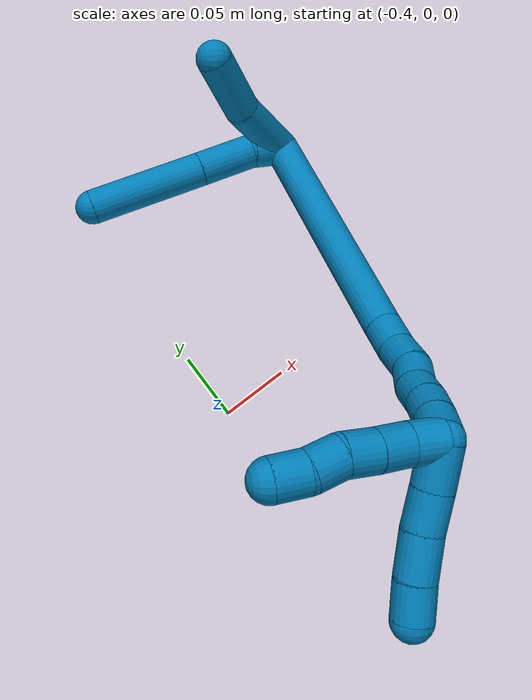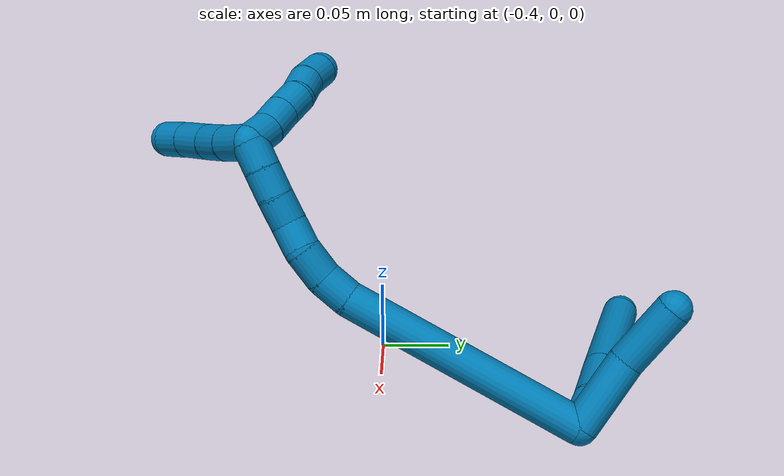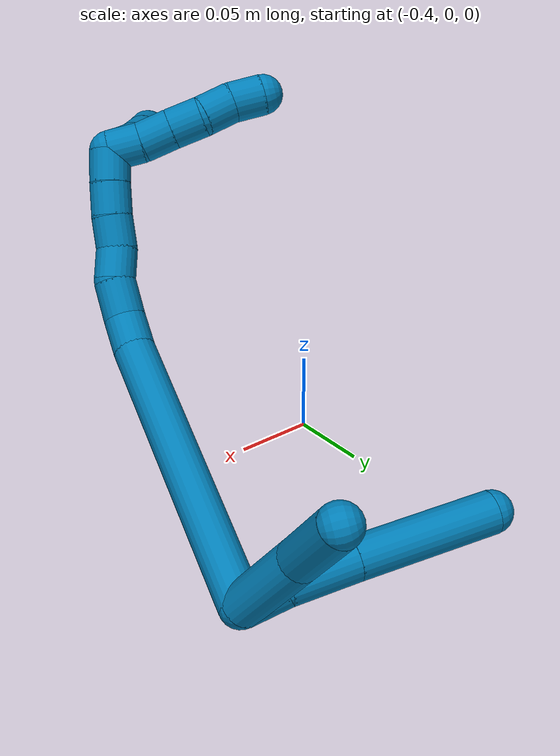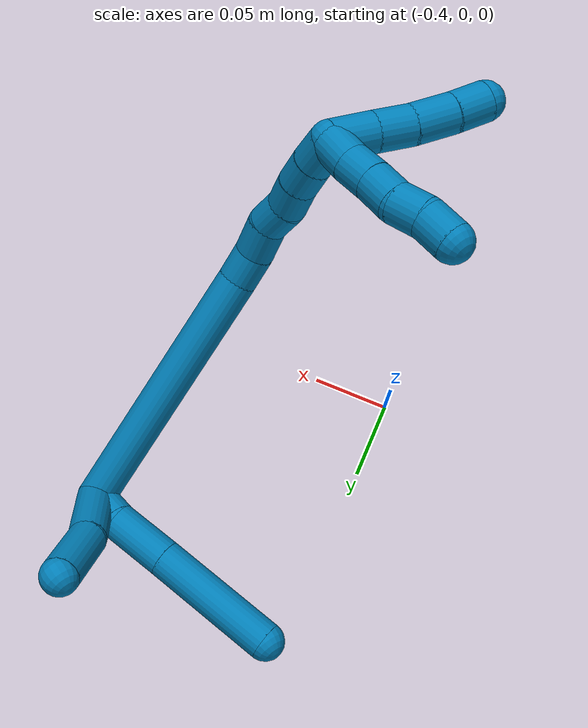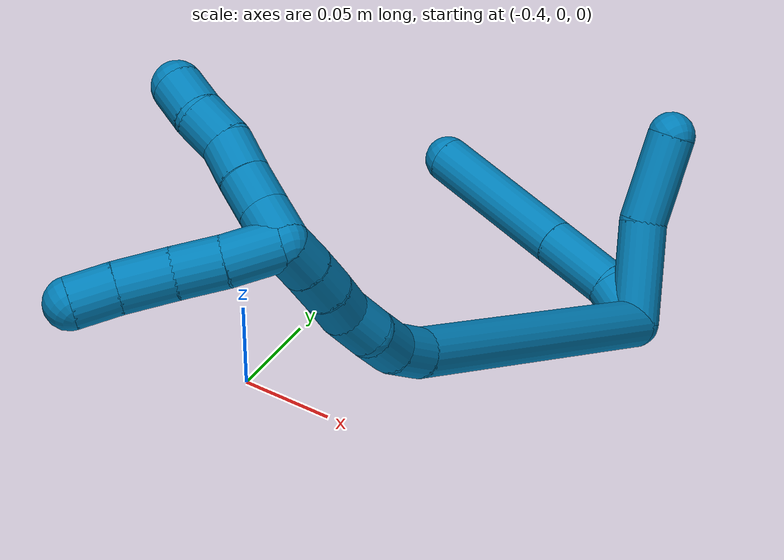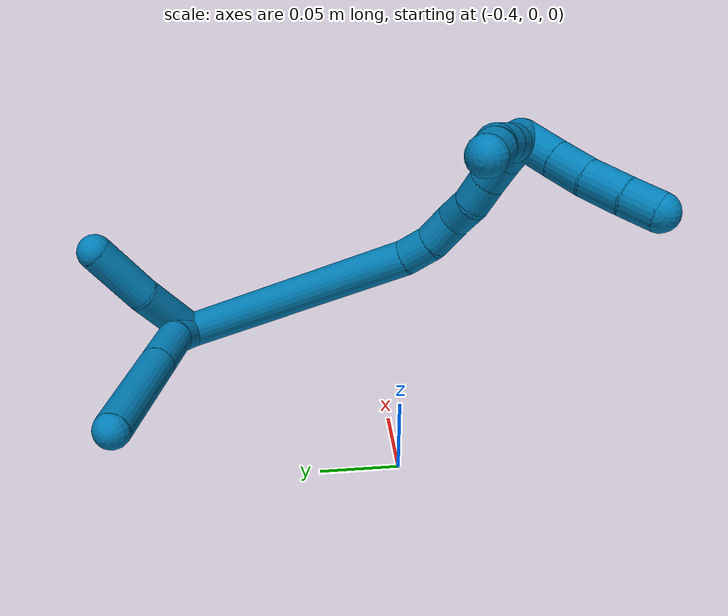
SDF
<sdf version="1.7">
 <world name="default">
  <model name="9">
   <static>0</static>
   <link name="9">
    <collision name="collision-cylinder-e_1_2_8">
     <pose>4.3e-05 -0.002421 0.012583 0.190098 0.003324 0.000317</pose>
     <geometry><cylinder><radius>0.0125</radius><length>0.025628</length></cylinder></geometry>
     <surface>
      <friction><ode><mu>1.16</mu><mu2>1.16</mu2><slip1>0</slip1><slip2>0</slip2></ode></friction>
      <contact><ode><kp>1e+06</kp><kd>1</kd><max_vel>0</max_vel><min_depth>0.001</min_depth></ode></contact>
     </surface>
    </collision>
    <visual name="visual-cylinder-e_1_2_8">
     <pose>4.3e-05 -0.002421 0.012583 0.190098 0.003324 0.000317</pose>
     <geometry><cylinder><radius>0.0125</radius><length>0.025628</length></cylinder></geometry>
     <material><ambient>0 0.490196 0.709804 1</ambient></material>
    </visual>
    <collision name="collision-cylinder-e_2_8_9">
     <pose>-0.005436 -0.005796 0.044583 0.049077 -0.27673 -0.006836</pose>
     <geometry><cylinder><radius>0.0125</radius><length>0.040417</length></cylinder></geometry>
     <surface>
      <friction><ode><mu>1.16</mu><mu2>1.16</mu2><slip1>0</slip1><slip2>0</slip2></ode></friction>
      <contact><ode><kp>1e+06</kp><kd>1</kd><max_vel>0</max_vel><min_depth>0.001</min_depth></ode></contact>
     </surface>
    </collision>
    <visual name="visual-cylinder-e_2_8_9">
     <pose>-0.005436 -0.005796 0.044583 0.049077 -0.27673 -0.006836</pose>
     <geometry><cylinder><radius>0.0125</radius><length>0.040417</length></cylinder></geometry>
     <material><ambient>0 0.490196 0.709804 1</ambient></material>
    </visual>
    <collision name="collision-cylinder-e_3_9_6">
     <pose>-0.022375 -0.007985 0.104374 0.030577 -0.275483 -0.004239</pose>
     <geometry><cylinder><radius>0.0125</radius><length>0.083955</length></cylinder></geometry>
     <surface>
      <friction><ode><mu>1.16</mu><mu2>1.16</mu2><slip1>0</slip1><slip2>0</slip2></ode></friction>
      <contact><ode><kp>1e+06</kp><kd>1</kd><max_vel>0</max_vel><min_depth>0.001</min_depth></ode></contact>
     </surface>
    </collision>
    <visual name="visual-cylinder-e_3_9_6">
     <pose>-0.022375 -0.007985 0.104374 0.030577 -0.275483 -0.004239</pose>
     <geometry><cylinder><radius>0.0125</radius><length>0.083955</length></cylinder></geometry>
     <material><ambient>0 0.490196 0.709804 1</ambient></material>
    </visual>
    <collision name="collision-cylinder-e_1_2_10">
     <pose>0.017009 -0.010013 0.017698 0.51488 0.696561 0.190607</pose>
     <geometry><cylinder><radius>0.0125</radius><length>0.05302</length></cylinder></geometry>
     <surface>
      <friction><ode><mu>1.16</mu><mu2>1.16</mu2><slip1>0</slip1><slip2>0</slip2></ode></friction>
      <contact><ode><kp>1e+06</kp><kd>1</kd><max_vel>0</max_vel><min_depth>0.001</min_depth></ode></contact>
     </surface>
    </collision>
    <visual name="visual-cylinder-e_1_2_10">
     <pose>0.017009 -0.010013 0.017698 0.51488 0.696561 0.190607</pose>
     <geometry><cylinder><radius>0.0125</radius><length>0.05302</length></cylinder></geometry>
     <material><ambient>0 0.490196 0.709804 1</ambient></material>
    </visual>
    <collision name="collision-cylinder-e_2_10_5">
     <pose>0.052883 -0.027801 0.047033 0.588975 0.932594 0.302979</pose>
     <geometry><cylinder><radius>0.0125</radius><length>0.04698</length></cylinder></geometry>
     <surface>
      <friction><ode><mu>1.16</mu><mu2>1.16</mu2><slip1>0</slip1><slip2>0</slip2></ode></friction>
      <contact><ode><kp>1e+06</kp><kd>1</kd><max_vel>0</max_vel><min_depth>0.001</min_depth></ode></contact>
     </surface>
    </collision>
    <visual name="visual-cylinder-e_2_10_5">
     <pose>0.052883 -0.027801 0.047033 0.588975 0.932594 0.302979</pose>
     <geometry><cylinder><radius>0.0125</radius><length>0.04698</length></cylinder></geometry>
     <material><ambient>0 0.490196 0.709804 1</ambient></material>
    </visual>
    <collision name="collision-cylinder-e_1_2_11">
     <pose>-0.043645 -0.074267 -0.014127 1.75876 -0.523578 -0.626124</pose>
     <geometry><cylinder><radius>0.0125</radius><length>0.174586</length></cylinder></geometry>
     <surface>
      <friction><ode><mu>1.16</mu><mu2>1.16</mu2><slip1>0</slip1><slip2>0</slip2></ode></friction>
      <contact><ode><kp>1e+06</kp><kd>1</kd><max_vel>0</max_vel><min_depth>0.001</min_depth></ode></contact>
     </surface>
    </collision>
    <visual name="visual-cylinder-e_1_2_11">
     <pose>-0.043645 -0.074267 -0.014127 1.75876 -0.523578 -0.626124</pose>
     <geometry><cylinder><radius>0.0125</radius><length>0.174586</length></cylinder></geometry>
     <material><ambient>0 0.490196 0.709804 1</ambient></material>
    </visual>
    <collision name="collision-cylinder-e_2_11_12">
     <pose>-0.09094 -0.158771 -0.029052 1.64868 -0.341533 -0.368626</pose>
     <geometry><cylinder><radius>0.0125</radius><length>0.021794</length></cylinder></geometry>
     <surface>
      <friction><ode><mu>1.16</mu><mu2>1.16</mu2><slip1>0</slip1><slip2>0</slip2></ode></friction>
      <contact><ode><kp>1e+06</kp><kd>1</kd><max_vel>0</max_vel><min_depth>0.001</min_depth></ode></contact>
     </surface>
    </collision>
    <visual name="visual-cylinder-e_2_11_12">
     <pose>-0.09094 -0.158771 -0.029052 1.64868 -0.341533 -0.368626</pose>
     <geometry><cylinder><radius>0.0125</radius><length>0.021794</length></cylinder></geometry>
     <material><ambient>0 0.490196 0.709804 1</ambient></material>
    </visual>
    <collision name="collision-cylinder-e_3_12_13">
     <pose>-0.09557 -0.180746 -0.030039 1.58683 -0.083298 -0.084643</pose>
     <geometry><cylinder><radius>0.0125</radius><length>0.02356</length></cylinder></geometry>
     <surface>
      <friction><ode><mu>1.16</mu><mu2>1.16</mu2><slip1>0</slip1><slip2>0</slip2></ode></friction>
      <contact><ode><kp>1e+06</kp><kd>1</kd><max_vel>0</max_vel><min_depth>0.001</min_depth></ode></contact>
     </surface>
    </collision>
    <visual name="visual-cylinder-e_3_12_13">
     <pose>-0.09557 -0.180746 -0.030039 1.58683 -0.083298 -0.084643</pose>
     <geometry><cylinder><radius>0.0125</radius><length>0.02356</length></cylinder></geometry>
     <material><ambient>0 0.490196 0.709804 1</ambient></material>
    </visual>
    <collision name="collision-cylinder-e_4_13_14">
     <pose>-0.098061 -0.201934 -0.027306 1.27098 -0.151642 -0.111942</pose>
     <geometry><cylinder><radius>0.0125</radius><length>0.020013</length></cylinder></geometry>
     <surface>
      <friction><ode><mu>1.16</mu><mu2>1.16</mu2><slip1>0</slip1><slip2>0</slip2></ode></friction>
      <contact><ode><kp>1e+06</kp><kd>1</kd><max_vel>0</max_vel><min_depth>0.001</min_depth></ode></contact>
     </surface>
    </collision>
    <visual name="visual-cylinder-e_4_13_14">
     <pose>-0.098061 -0.201934 -0.027306 1.27098 -0.151642 -0.111942</pose>
     <geometry><cylinder><radius>0.0125</radius><length>0.020013</length></cylinder></geometry>
     <material><ambient>0 0.490196 0.709804 1</ambient></material>
    </visual>
    <collision name="collision-cylinder-e_5_14_15">
     <pose>-0.099048 -0.221331 -0.023316 1.46383 0.052477 0.047146</pose>
     <geometry><cylinder><radius>0.0125</radius><length>0.020036</length></cylinder></geometry>
     <surface>
      <friction><ode><mu>1.16</mu><mu2>1.16</mu2><slip1>0</slip1><slip2>0</slip2></ode></friction>
      <contact><ode><kp>1e+06</kp><kd>1</kd><max_vel>0</max_vel><min_depth>0.001</min_depth></ode></contact>
     </surface>
    </collision>
    <visual name="visual-cylinder-e_5_14_15">
     <pose>-0.099048 -0.221331 -0.023316 1.46383 0.052477 0.047146</pose>
     <geometry><cylinder><radius>0.0125</radius><length>0.020036</length></cylinder></geometry>
     <material><ambient>0 0.490196 0.709804 1</ambient></material>
    </visual>
    <collision name="collision-cylinder-e_6_15_16">
     <pose>-0.098463 -0.241096 -0.020323 1.37713 0.005875 0.004835</pose>
     <geometry><cylinder><radius>0.0125</radius><length>0.02001</length></cylinder></geometry>
     <surface>
      <friction><ode><mu>1.16</mu><mu2>1.16</mu2><slip1>0</slip1><slip2>0</slip2></ode></friction>
      <contact><ode><kp>1e+06</kp><kd>1</kd><max_vel>0</max_vel><min_depth>0.001</min_depth></ode></contact>
     </surface>
    </collision>
    <visual name="visual-cylinder-e_6_15_16">
     <pose>-0.098463 -0.241096 -0.020323 1.37713 0.005875 0.004835</pose>
     <geometry><cylinder><radius>0.0125</radius><length>0.02001</length></cylinder></geometry>
     <material><ambient>0 0.490196 0.709804 1</ambient></material>
    </visual>
    <collision name="collision-cylinder-e_7_16_1">
     <pose>-0.098721 -0.260622 -0.01602 1.33065 -0.031638 -0.024826</pose>
     <geometry><cylinder><radius>0.0125</radius><length>0.020001</length></cylinder></geometry>
     <surface>
      <friction><ode><mu>1.16</mu><mu2>1.16</mu2><slip1>0</slip1><slip2>0</slip2></ode></friction>
      <contact><ode><kp>1e+06</kp><kd>1</kd><max_vel>0</max_vel><min_depth>0.001</min_depth></ode></contact>
     </surface>
    </collision>
    <visual name="visual-cylinder-e_7_16_1">
     <pose>-0.098721 -0.260622 -0.01602 1.33065 -0.031638 -0.024826</pose>
     <geometry><cylinder><radius>0.0125</radius><length>0.020001</length></cylinder></geometry>
     <material><ambient>0 0.490196 0.709804 1</ambient></material>
    </visual>
    <collision name="collision-cylinder-e_1_1_17">
     <pose>-0.111957 -0.273327 -0.010443 0.752648 -1.24373 -0.551983</pose>
     <geometry><cylinder><radius>0.0125</radius><length>0.027286</length></cylinder></geometry>
     <surface>
      <friction><ode><mu>1.16</mu><mu2>1.16</mu2><slip1>0</slip1><slip2>0</slip2></ode></friction>
      <contact><ode><kp>1e+06</kp><kd>1</kd><max_vel>0</max_vel><min_depth>0.001</min_depth></ode></contact>
     </surface>
    </collision>
    <visual name="visual-cylinder-e_1_1_17">
     <pose>-0.111957 -0.273327 -0.010443 0.752648 -1.24373 -0.551983</pose>
     <geometry><cylinder><radius>0.0125</radius><length>0.027286</length></cylinder></geometry>
     <material><ambient>0 0.490196 0.709804 1</ambient></material>
    </visual>
    <collision name="collision-cylinder-e_2_17_18">
     <pose>-0.135855 -0.279318 -0.003862 0.724742 -1.18037 -0.497362</pose>
     <geometry><cylinder><radius>0.0125</radius><length>0.023743</length></cylinder></geometry>
     <surface>
      <friction><ode><mu>1.16</mu><mu2>1.16</mu2><slip1>0</slip1><slip2>0</slip2></ode></friction>
      <contact><ode><kp>1e+06</kp><kd>1</kd><max_vel>0</max_vel><min_depth>0.001</min_depth></ode></contact>
     </surface>
    </collision>
    <visual name="visual-cylinder-e_2_17_18">
     <pose>-0.135855 -0.279318 -0.003862 0.724742 -1.18037 -0.497362</pose>
     <geometry><cylinder><radius>0.0125</radius><length>0.023743</length></cylinder></geometry>
     <material><ambient>0 0.490196 0.709804 1</ambient></material>
    </visual>
    <collision name="collision-cylinder-e_3_18_19">
     <pose>-0.159167 -0.286522 0.002495 0.955572 -1.175 -0.664114</pose>
     <geometry><cylinder><radius>0.0125</radius><length>0.026734</length></cylinder></geometry>
     <surface>
      <friction><ode><mu>1.16</mu><mu2>1.16</mu2><slip1>0</slip1><slip2>0</slip2></ode></friction>
      <contact><ode><kp>1e+06</kp><kd>1</kd><max_vel>0</max_vel><min_depth>0.001</min_depth></ode></contact>
     </surface>
    </collision>
    <visual name="visual-cylinder-e_3_18_19">
     <pose>-0.159167 -0.286522 0.002495 0.955572 -1.175 -0.664114</pose>
     <geometry><cylinder><radius>0.0125</radius><length>0.026734</length></cylinder></geometry>
     <material><ambient>0 0.490196 0.709804 1</ambient></material>
    </visual>
    <collision name="collision-cylinder-e_4_19_4">
     <pose>-0.181893 -0.294316 0.00713 1.13709 -1.20745 -0.830038</pose>
     <geometry><cylinder><radius>0.0125</radius><length>0.022237</length></cylinder></geometry>
     <surface>
      <friction><ode><mu>1.16</mu><mu2>1.16</mu2><slip1>0</slip1><slip2>0</slip2></ode></friction>
      <contact><ode><kp>1e+06</kp><kd>1</kd><max_vel>0</max_vel><min_depth>0.001</min_depth></ode></contact>
     </surface>
    </collision>
    <visual name="visual-cylinder-e_4_19_4">
     <pose>-0.181893 -0.294316 0.00713 1.13709 -1.20745 -0.830038</pose>
     <geometry><cylinder><radius>0.0125</radius><length>0.022237</length></cylinder></geometry>
     <material><ambient>0 0.490196 0.709804 1</ambient></material>
    </visual>
    <collision name="collision-cylinder-e_1_1_20">
     <pose>-0.098967 -0.270376 -0.003643 0.004554 0.006992 1.6e-05</pose>
     <geometry><cylinder><radius>0.0125</radius><length>0.02</length></cylinder></geometry>
     <surface>
      <friction><ode><mu>1.16</mu><mu2>1.16</mu2><slip1>0</slip1><slip2>0</slip2></ode></friction>
      <contact><ode><kp>1e+06</kp><kd>1</kd><max_vel>0</max_vel><min_depth>0.001</min_depth></ode></contact>
     </surface>
    </collision>
    <visual name="visual-cylinder-e_1_1_20">
     <pose>-0.098967 -0.270376 -0.003643 0.004554 0.006992 1.6e-05</pose>
     <geometry><cylinder><radius>0.0125</radius><length>0.02</length></cylinder></geometry>
     <material><ambient>0 0.490196 0.709804 1</ambient></material>
    </visual>
    <collision name="collision-cylinder-e_2_20_21">
     <pose>-0.098515 -0.272054 0.016215 0.164103 0.038204 0.003142</pose>
     <geometry><cylinder><radius>0.0125</radius><length>0.02</length></cylinder></geometry>
     <surface>
      <friction><ode><mu>1.16</mu><mu2>1.16</mu2><slip1>0</slip1><slip2>0</slip2></ode></friction>
      <contact><ode><kp>1e+06</kp><kd>1</kd><max_vel>0</max_vel><min_depth>0.001</min_depth></ode></contact>
     </surface>
    </collision>
    <visual name="visual-cylinder-e_2_20_21">
     <pose>-0.098515 -0.272054 0.016215 0.164103 0.038204 0.003142</pose>
     <geometry><cylinder><radius>0.0125</radius><length>0.02</length></cylinder></geometry>
     <material><ambient>0 0.490196 0.709804 1</ambient></material>
    </visual>
    <collision name="collision-cylinder-e_3_21_22">
     <pose>-0.097398 -0.274897 0.035973 0.121625 0.073627 0.004485</pose>
     <geometry><cylinder><radius>0.0125</radius><length>0.02</length></cylinder></geometry>
     <surface>
      <friction><ode><mu>1.16</mu><mu2>1.16</mu2><slip1>0</slip1><slip2>0</slip2></ode></friction>
      <contact><ode><kp>1e+06</kp><kd>1</kd><max_vel>0</max_vel><min_depth>0.001</min_depth></ode></contact>
     </surface>
    </collision>
    <visual name="visual-cylinder-e_3_21_22">
     <pose>-0.097398 -0.274897 0.035973 0.121625 0.073627 0.004485</pose>
     <geometry><cylinder><radius>0.0125</radius><length>0.02</length></cylinder></geometry>
     <material><ambient>0 0.490196 0.709804 1</ambient></material>
    </visual>
    <collision name="collision-cylinder-e_4_22_23">
     <pose>-0.098496 -0.278433 0.055423 0.238903 -0.18442 -0.022197</pose>
     <geometry><cylinder><radius>0.0125</radius><length>0.02</length></cylinder></geometry>
     <surface>
      <friction><ode><mu>1.16</mu><mu2>1.16</mu2><slip1>0</slip1><slip2>0</slip2></ode></friction>
      <contact><ode><kp>1e+06</kp><kd>1</kd><max_vel>0</max_vel><min_depth>0.001</min_depth></ode></contact>
     </surface>
    </collision>
    <visual name="visual-cylinder-e_4_22_23">
     <pose>-0.098496 -0.278433 0.055423 0.238903 -0.18442 -0.022197</pose>
     <geometry><cylinder><radius>0.0125</radius><length>0.02</length></cylinder></geometry>
     <material><ambient>0 0.490196 0.709804 1</ambient></material>
    </visual>
    <collision name="collision-cylinder-e_5_23_3">
     <pose>-0.101123 -0.280942 0.074942 0.018353 -0.079365 -0.000729</pose>
     <geometry><cylinder><radius>0.0125</radius><length>0.02</length></cylinder></geometry>
     <surface>
      <friction><ode><mu>1.16</mu><mu2>1.16</mu2><slip1>0</slip1><slip2>0</slip2></ode></friction>
      <contact><ode><kp>1e+06</kp><kd>1</kd><max_vel>0</max_vel><min_depth>0.001</min_depth></ode></contact>
     </surface>
    </collision>
    <visual name="visual-cylinder-e_5_23_3">
     <pose>-0.101123 -0.280942 0.074942 0.018353 -0.079365 -0.000729</pose>
     <geometry><cylinder><radius>0.0125</radius><length>0.02</length></cylinder></geometry>
     <material><ambient>0 0.490196 0.709804 1</ambient></material>
    </visual>
    <collision name="collision-sphere-3">
     <pose>-0.101915 -0.281125 0.084908 0 -0 0</pose>
     <geometry><sphere><radius>0.0125</radius></sphere></geometry>
     <surface>
      <friction><ode><mu>1.16</mu><mu2>1.16</mu2><slip1>0</slip1><slip2>0</slip2></ode></friction>
      <contact><ode><kp>1e+06</kp><kd>1</kd><max_vel>0</max_vel><min_depth>0.001</min_depth></ode></contact>
     </surface>
    </collision>
    <visual name="visual-sphere-3">
     <pose>-0.101915 -0.281125 0.084908 0 -0 0</pose>
     <geometry><sphere><radius>0.0125</radius></sphere></geometry>
     <material><ambient>0 0.490196 0.709804 1</ambient></material>
    </visual>
    <collision name="collision-sphere-23">
     <pose>-0.10033 -0.280759 0.064975 0 -0 0</pose>
     <geometry><sphere><radius>0.0125</radius></sphere></geometry>
     <surface>
      <friction><ode><mu>1.16</mu><mu2>1.16</mu2><slip1>0</slip1><slip2>0</slip2></ode></friction>
      <contact><ode><kp>1e+06</kp><kd>1</kd><max_vel>0</max_vel><min_depth>0.001</min_depth></ode></contact>
     </surface>
    </collision>
    <visual name="visual-sphere-23">
     <pose>-0.10033 -0.280759 0.064975 0 -0 0</pose>
     <geometry><sphere><radius>0.0125</radius></sphere></geometry>
     <material><ambient>0 0.490196 0.709804 1</ambient></material>
    </visual>
    <collision name="collision-sphere-22">
     <pose>-0.096662 -0.276107 0.045872 0 -0 0</pose>
     <geometry><sphere><radius>0.0125</radius></sphere></geometry>
     <surface>
      <friction><ode><mu>1.16</mu><mu2>1.16</mu2><slip1>0</slip1><slip2>0</slip2></ode></friction>
      <contact><ode><kp>1e+06</kp><kd>1</kd><max_vel>0</max_vel><min_depth>0.001</min_depth></ode></contact>
     </surface>
    </collision>
    <visual name="visual-sphere-22">
     <pose>-0.096662 -0.276107 0.045872 0 -0 0</pose>
     <geometry><sphere><radius>0.0125</radius></sphere></geometry>
     <material><ambient>0 0.490196 0.709804 1</ambient></material>
    </visual>
    <collision name="collision-sphere-21">
     <pose>-0.098133 -0.273687 0.026074 0 -0 0</pose>
     <geometry><sphere><radius>0.0125</radius></sphere></geometry>
     <surface>
      <friction><ode><mu>1.16</mu><mu2>1.16</mu2><slip1>0</slip1><slip2>0</slip2></ode></friction>
      <contact><ode><kp>1e+06</kp><kd>1</kd><max_vel>0</max_vel><min_depth>0.001</min_depth></ode></contact>
     </surface>
    </collision>
    <visual name="visual-sphere-21">
     <pose>-0.098133 -0.273687 0.026074 0 -0 0</pose>
     <geometry><sphere><radius>0.0125</radius></sphere></geometry>
     <material><ambient>0 0.490196 0.709804 1</ambient></material>
    </visual>
    <collision name="collision-sphere-20">
     <pose>-0.098897 -0.270422 0.006357 0 -0 0</pose>
     <geometry><sphere><radius>0.0125</radius></sphere></geometry>
     <surface>
      <friction><ode><mu>1.16</mu><mu2>1.16</mu2><slip1>0</slip1><slip2>0</slip2></ode></friction>
      <contact><ode><kp>1e+06</kp><kd>1</kd><max_vel>0</max_vel><min_depth>0.001</min_depth></ode></contact>
     </surface>
    </collision>
    <visual name="visual-sphere-20">
     <pose>-0.098897 -0.270422 0.006357 0 -0 0</pose>
     <geometry><sphere><radius>0.0125</radius></sphere></geometry>
     <material><ambient>0 0.490196 0.709804 1</ambient></material>
    </visual>
    <collision name="collision-sphere-4">
     <pose>-0.192285 -0.297902 0.008791 0 -0 0</pose>
     <geometry><sphere><radius>0.0125</radius></sphere></geometry>
     <surface>
      <friction><ode><mu>1.16</mu><mu2>1.16</mu2><slip1>0</slip1><slip2>0</slip2></ode></friction>
      <contact><ode><kp>1e+06</kp><kd>1</kd><max_vel>0</max_vel><min_depth>0.001</min_depth></ode></contact>
     </surface>
    </collision>
    <visual name="visual-sphere-4">
     <pose>-0.192285 -0.297902 0.008791 0 -0 0</pose>
     <geometry><sphere><radius>0.0125</radius></sphere></geometry>
     <material><ambient>0 0.490196 0.709804 1</ambient></material>
    </visual>
    <collision name="collision-sphere-5">
     <pose>0.07175 -0.035575 0.058669 0 -0 0</pose>
     <geometry><sphere><radius>0.0125</radius></sphere></geometry>
     <surface>
      <friction><ode><mu>1.16</mu><mu2>1.16</mu2><slip1>0</slip1><slip2>0</slip2></ode></friction>
      <contact><ode><kp>1e+06</kp><kd>1</kd><max_vel>0</max_vel><min_depth>0.001</min_depth></ode></contact>
     </surface>
    </collision>
    <visual name="visual-sphere-5">
     <pose>0.07175 -0.035575 0.058669 0 -0 0</pose>
     <geometry><sphere><radius>0.0125</radius></sphere></geometry>
     <material><ambient>0 0.490196 0.709804 1</ambient></material>
    </visual>
    <collision name="collision-sphere-10">
     <pose>0.034017 -0.020027 0.035397 0 -0 0</pose>
     <geometry><sphere><radius>0.0125</radius></sphere></geometry>
     <surface>
      <friction><ode><mu>1.16</mu><mu2>1.16</mu2><slip1>0</slip1><slip2>0</slip2></ode></friction>
      <contact><ode><kp>1e+06</kp><kd>1</kd><max_vel>0</max_vel><min_depth>0.001</min_depth></ode></contact>
     </surface>
    </collision>
    <visual name="visual-sphere-10">
     <pose>0.034017 -0.020027 0.035397 0 -0 0</pose>
     <geometry><sphere><radius>0.0125</radius></sphere></geometry>
     <material><ambient>0 0.490196 0.709804 1</ambient></material>
    </visual>
    <collision name="collision-sphere-6">
     <pose>-0.033794 -0.00922 0.14475 0 -0 0</pose>
     <geometry><sphere><radius>0.0125</radius></sphere></geometry>
     <surface>
      <friction><ode><mu>1.16</mu><mu2>1.16</mu2><slip1>0</slip1><slip2>0</slip2></ode></friction>
      <contact><ode><kp>1e+06</kp><kd>1</kd><max_vel>0</max_vel><min_depth>0.001</min_depth></ode></contact>
     </surface>
    </collision>
    <visual name="visual-sphere-6">
     <pose>-0.033794 -0.00922 0.14475 0 -0 0</pose>
     <geometry><sphere><radius>0.0125</radius></sphere></geometry>
     <material><ambient>0 0.490196 0.709804 1</ambient></material>
    </visual>
    <collision name="collision-sphere-9">
     <pose>-0.010957 -0.00675 0.063999 0 -0 0</pose>
     <geometry><sphere><radius>0.0125</radius></sphere></geometry>
     <surface>
      <friction><ode><mu>1.16</mu><mu2>1.16</mu2><slip1>0</slip1><slip2>0</slip2></ode></friction>
      <contact><ode><kp>1e+06</kp><kd>1</kd><max_vel>0</max_vel><min_depth>0.001</min_depth></ode></contact>
     </surface>
    </collision>
    <visual name="visual-sphere-9">
     <pose>-0.010957 -0.00675 0.063999 0 -0 0</pose>
     <geometry><sphere><radius>0.0125</radius></sphere></geometry>
     <material><ambient>0 0.490196 0.709804 1</ambient></material>
    </visual>
    <collision name="collision-sphere-2">
     <geometry><sphere><radius>0.0125</radius></sphere></geometry>
     <surface>
      <friction><ode><mu>1.16</mu><mu2>1.16</mu2><slip1>0</slip1><slip2>0</slip2></ode></friction>
      <contact><ode><kp>1e+06</kp><kd>1</kd><max_vel>0</max_vel><min_depth>0.001</min_depth></ode></contact>
     </surface>
    </collision>
    <visual name="visual-sphere-2">
     <geometry><sphere><radius>0.0125</radius></sphere></geometry>
     <material><ambient>0 0.490196 0.709804 1</ambient></material>
    </visual>
    <collision name="collision-sphere-19">
     <pose>-0.171501 -0.290731 0.00547 0 -0 0</pose>
     <geometry><sphere><radius>0.0125</radius></sphere></geometry>
     <surface>
      <friction><ode><mu>1.16</mu><mu2>1.16</mu2><slip1>0</slip1><slip2>0</slip2></ode></friction>
      <contact><ode><kp>1e+06</kp><kd>1</kd><max_vel>0</max_vel><min_depth>0.001</min_depth></ode></contact>
     </surface>
    </collision>
    <visual name="visual-sphere-19">
     <pose>-0.171501 -0.290731 0.00547 0 -0 0</pose>
     <geometry><sphere><radius>0.0125</radius></sphere></geometry>
     <material><ambient>0 0.490196 0.709804 1</ambient></material>
    </visual>
    <collision name="collision-sphere-8">
     <pose>8.5e-05 -0.004843 0.025167 0 -0 0</pose>
     <geometry><sphere><radius>0.0125</radius></sphere></geometry>
     <surface>
      <friction><ode><mu>1.16</mu><mu2>1.16</mu2><slip1>0</slip1><slip2>0</slip2></ode></friction>
      <contact><ode><kp>1e+06</kp><kd>1</kd><max_vel>0</max_vel><min_depth>0.001</min_depth></ode></contact>
     </surface>
    </collision>
    <visual name="visual-sphere-8">
     <pose>8.5e-05 -0.004843 0.025167 0 -0 0</pose>
     <geometry><sphere><radius>0.0125</radius></sphere></geometry>
     <material><ambient>0 0.490196 0.709804 1</ambient></material>
    </visual>
    <collision name="collision-sphere-11">
     <pose>-0.08729 -0.148535 -0.028253 0 -0 0</pose>
     <geometry><sphere><radius>0.0125</radius></sphere></geometry>
     <surface>
      <friction><ode><mu>1.16</mu><mu2>1.16</mu2><slip1>0</slip1><slip2>0</slip2></ode></friction>
      <contact><ode><kp>1e+06</kp><kd>1</kd><max_vel>0</max_vel><min_depth>0.001</min_depth></ode></contact>
     </surface>
    </collision>
    <visual name="visual-sphere-11">
     <pose>-0.08729 -0.148535 -0.028253 0 -0 0</pose>
     <geometry><sphere><radius>0.0125</radius></sphere></geometry>
     <material><ambient>0 0.490196 0.709804 1</ambient></material>
    </visual>
    <collision name="collision-sphere-12">
     <pose>-0.09459 -0.169008 -0.029851 0 -0 0</pose>
     <geometry><sphere><radius>0.0125</radius></sphere></geometry>
     <surface>
      <friction><ode><mu>1.16</mu><mu2>1.16</mu2><slip1>0</slip1><slip2>0</slip2></ode></friction>
      <contact><ode><kp>1e+06</kp><kd>1</kd><max_vel>0</max_vel><min_depth>0.001</min_depth></ode></contact>
     </surface>
    </collision>
    <visual name="visual-sphere-12">
     <pose>-0.09459 -0.169008 -0.029851 0 -0 0</pose>
     <geometry><sphere><radius>0.0125</radius></sphere></geometry>
     <material><ambient>0 0.490196 0.709804 1</ambient></material>
    </visual>
    <collision name="collision-sphere-13">
     <pose>-0.09655 -0.192484 -0.030227 0 -0 0</pose>
     <geometry><sphere><radius>0.0125</radius></sphere></geometry>
     <surface>
      <friction><ode><mu>1.16</mu><mu2>1.16</mu2><slip1>0</slip1><slip2>0</slip2></ode></friction>
      <contact><ode><kp>1e+06</kp><kd>1</kd><max_vel>0</max_vel><min_depth>0.001</min_depth></ode></contact>
     </surface>
    </collision>
    <visual name="visual-sphere-13">
     <pose>-0.09655 -0.192484 -0.030227 0 -0 0</pose>
     <geometry><sphere><radius>0.0125</radius></sphere></geometry>
     <material><ambient>0 0.490196 0.709804 1</ambient></material>
    </visual>
    <collision name="collision-sphere-14">
     <pose>-0.099573 -0.211384 -0.024384 0 -0 0</pose>
     <geometry><sphere><radius>0.0125</radius></sphere></geometry>
     <surface>
      <friction><ode><mu>1.16</mu><mu2>1.16</mu2><slip1>0</slip1><slip2>0</slip2></ode></friction>
      <contact><ode><kp>1e+06</kp><kd>1</kd><max_vel>0</max_vel><min_depth>0.001</min_depth></ode></contact>
     </surface>
    </collision>
    <visual name="visual-sphere-14">
     <pose>-0.099573 -0.211384 -0.024384 0 -0 0</pose>
     <geometry><sphere><radius>0.0125</radius></sphere></geometry>
     <material><ambient>0 0.490196 0.709804 1</ambient></material>
    </visual>
    <collision name="collision-sphere-15">
     <pose>-0.098522 -0.231278 -0.022248 0 -0 0</pose>
     <geometry><sphere><radius>0.0125</radius></sphere></geometry>
     <surface>
      <friction><ode><mu>1.16</mu><mu2>1.16</mu2><slip1>0</slip1><slip2>0</slip2></ode></friction>
      <contact><ode><kp>1e+06</kp><kd>1</kd><max_vel>0</max_vel><min_depth>0.001</min_depth></ode></contact>
     </surface>
    </collision>
    <visual name="visual-sphere-15">
     <pose>-0.098522 -0.231278 -0.022248 0 -0 0</pose>
     <geometry><sphere><radius>0.0125</radius></sphere></geometry>
     <material><ambient>0 0.490196 0.709804 1</ambient></material>
    </visual>
    <collision name="collision-sphere-16">
     <pose>-0.098404 -0.250913 -0.018397 0 -0 0</pose>
     <geometry><sphere><radius>0.0125</radius></sphere></geometry>
     <surface>
      <friction><ode><mu>1.16</mu><mu2>1.16</mu2><slip1>0</slip1><slip2>0</slip2></ode></friction>
      <contact><ode><kp>1e+06</kp><kd>1</kd><max_vel>0</max_vel><min_depth>0.001</min_depth></ode></contact>
     </surface>
    </collision>
    <visual name="visual-sphere-16">
     <pose>-0.098404 -0.250913 -0.018397 0 -0 0</pose>
     <geometry><sphere><radius>0.0125</radius></sphere></geometry>
     <material><ambient>0 0.490196 0.709804 1</ambient></material>
    </visual>
    <collision name="collision-sphere-1">
     <pose>-0.099037 -0.270331 -0.013642 0 -0 0</pose>
     <geometry><sphere><radius>0.0125</radius></sphere></geometry>
     <surface>
      <friction><ode><mu>1.16</mu><mu2>1.16</mu2><slip1>0</slip1><slip2>0</slip2></ode></friction>
      <contact><ode><kp>1e+06</kp><kd>1</kd><max_vel>0</max_vel><min_depth>0.001</min_depth></ode></contact>
     </surface>
    </collision>
    <visual name="visual-sphere-1">
     <pose>-0.099037 -0.270331 -0.013642 0 -0 0</pose>
     <geometry><sphere><radius>0.0125</radius></sphere></geometry>
     <material><ambient>0 0.490196 0.709804 1</ambient></material>
    </visual>
    <collision name="collision-sphere-18">
     <pose>-0.146833 -0.282313 -0.000479 0 -0 0</pose>
     <geometry><sphere><radius>0.0125</radius></sphere></geometry>
     <surface>
      <friction><ode><mu>1.16</mu><mu2>1.16</mu2><slip1>0</slip1><slip2>0</slip2></ode></friction>
      <contact><ode><kp>1e+06</kp><kd>1</kd><max_vel>0</max_vel><min_depth>0.001</min_depth></ode></contact>
     </surface>
    </collision>
    <visual name="visual-sphere-18">
     <pose>-0.146833 -0.282313 -0.000479 0 -0 0</pose>
     <geometry><sphere><radius>0.0125</radius></sphere></geometry>
     <material><ambient>0 0.490196 0.709804 1</ambient></material>
    </visual>
    <collision name="collision-sphere-17">
     <pose>-0.124877 -0.276323 -0.007244 0 -0 0</pose>
     <geometry><sphere><radius>0.0125</radius></sphere></geometry>
     <surface>
      <friction><ode><mu>1.16</mu><mu2>1.16</mu2><slip1>0</slip1><slip2>0</slip2></ode></friction>
      <contact><ode><kp>1e+06</kp><kd>1</kd><max_vel>0</max_vel><min_depth>0.001</min_depth></ode></contact>
     </surface>
    </collision>
    <visual name="visual-sphere-17">
     <pose>-0.124877 -0.276323 -0.007244 0 -0 0</pose>
     <geometry><sphere><radius>0.0125</radius></sphere></geometry>
     <material><ambient>0 0.490196 0.709804 1</ambient></material>
    </visual>
    <inertial>
     <pose>-0.057235 -0.13044 0.015885 0 -0 0</pose>
     <mass>0.75</mass>
     <inertia>
      <ixx>0.000172</ixx>
      <ixy>0</ixy>
      <ixz>0</ixz>
      <iyy>-9.2e-05</iyy>
      <iyz>0</iyz>
      <izz>0.000665</izz>
     </inertia>
    </inertial>
   </link>
   <pose>-0.246701 0.134476 0.012749 -1.32403 -0.526067 0.914039</pose>
  </model>
 </world>
</sdf>
